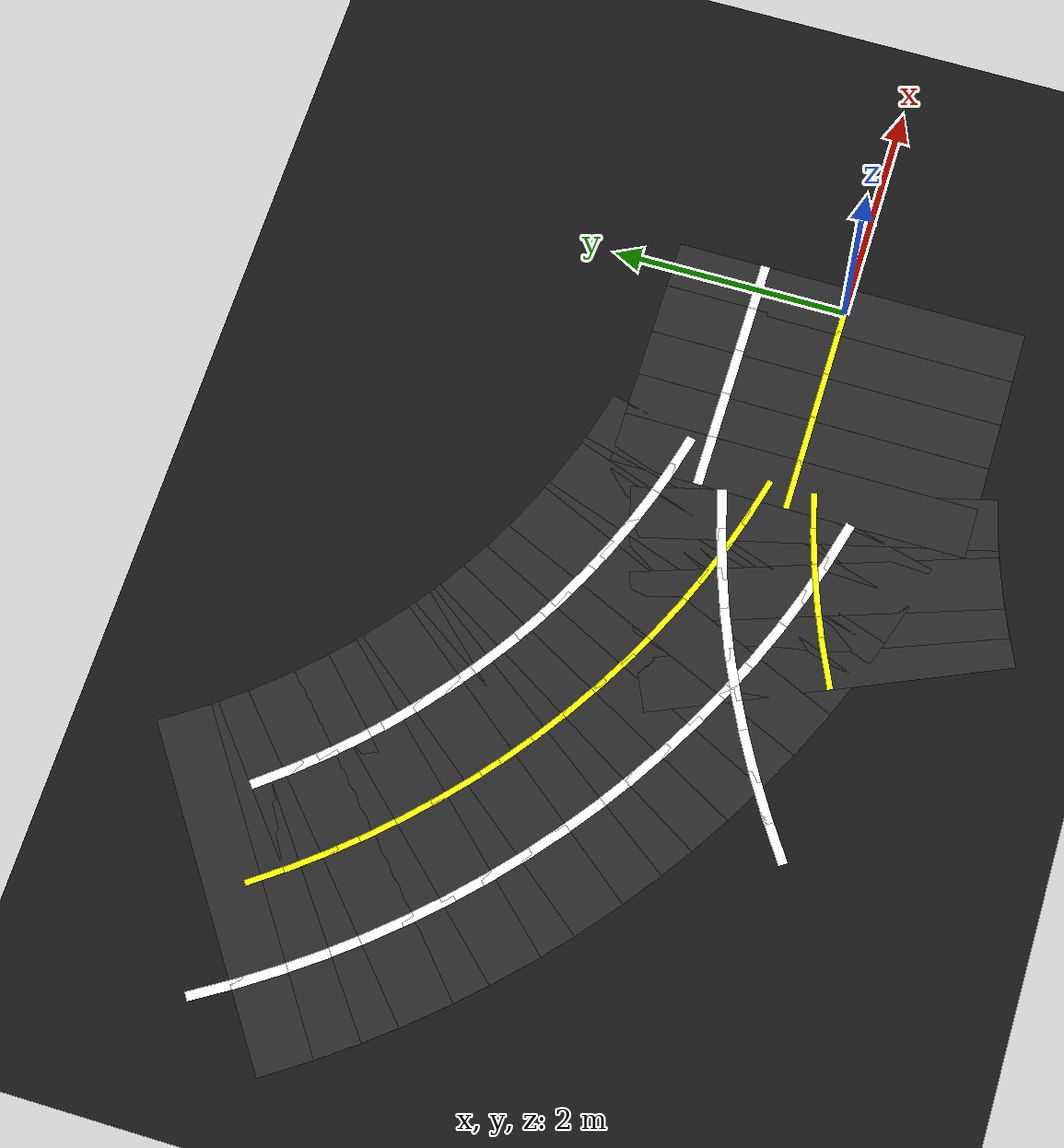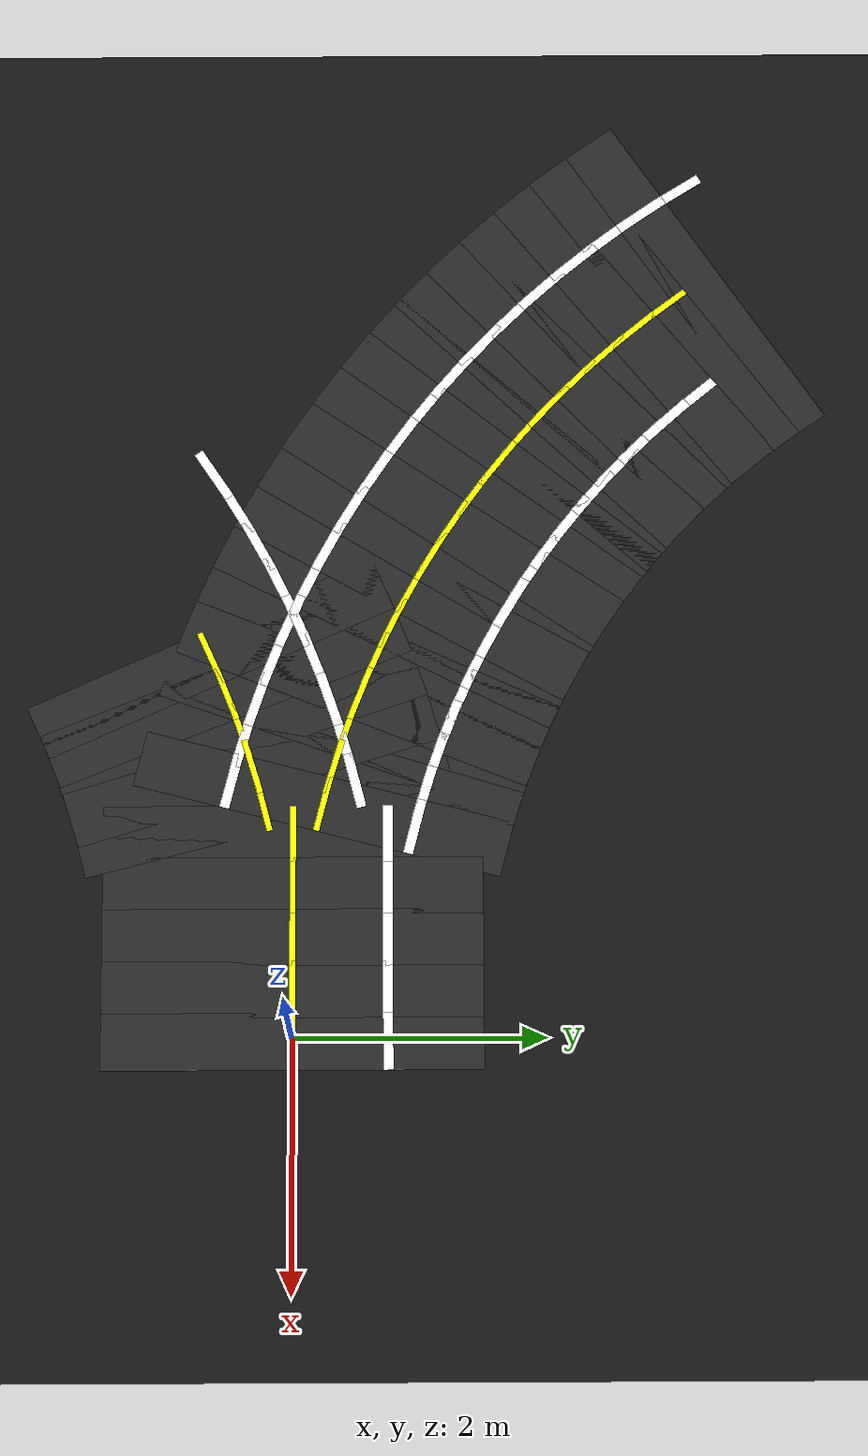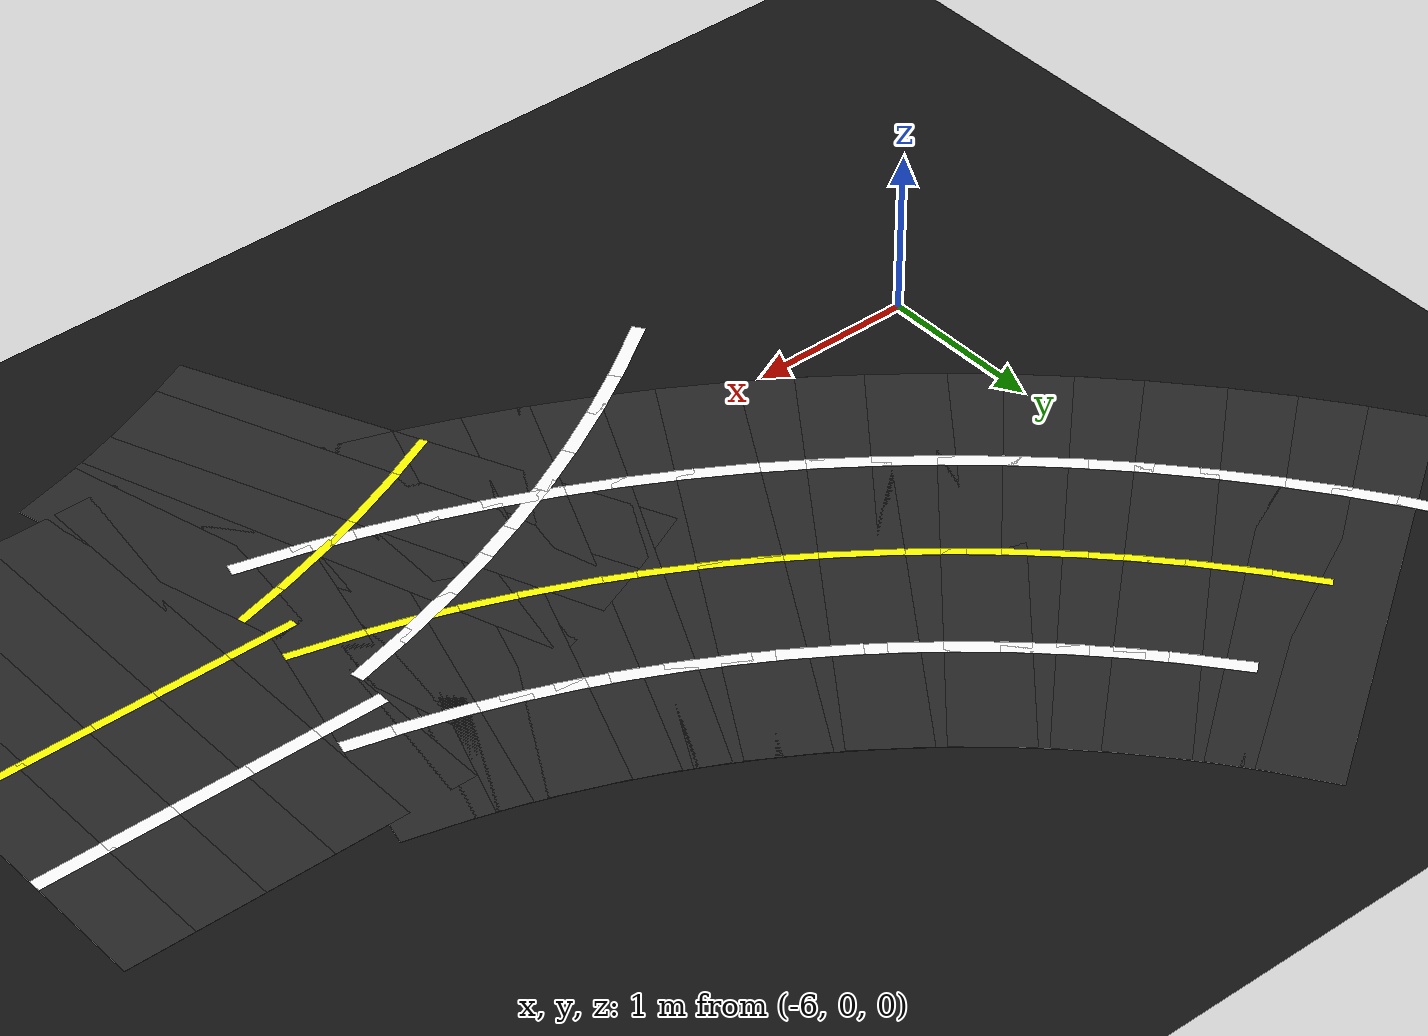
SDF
<sdf version="1.6">
 <world name="figure8_world">
  <model name="ground_plane">
   <static>true</static>
   <link name="link">
    <collision name="collision">
     <geometry><plane><normal>0 0 1</normal><size>100 100</size></plane></geometry>
    </collision>
    <visual name="visual">
     <geometry><plane><normal>0 0 1</normal><size>100 100</size></plane></geometry>
     <material><ambient>0.08 0.08 0.08 1</ambient><diffuse>0.08 0.08 0.08 1</diffuse></material>
    </visual>
   </link>
  </model>
  <model name="seg_00477">
   <static>true</static>
   <pose>-6.9954 3.1265 0.0030 0 0 5.2711</pose>
   <link name="link">
    <collision name="collision"><geometry><box><size>0.4500 0.0800 0.002</size></box></geometry></collision>
    <visual name="visual">
     <geometry><box><size>0.4500 0.0800 0.002</size></box></geometry>
     <material><ambient>1 1 1 1</ambient><diffuse>1 1 1 1</diffuse></material>
    </visual>
   </link>
  </model>
  <model name="seg_00480">
   <static>true</static>
   <pose>-6.1862 3.2596 0.0010 0 0 5.3133</pose>
   <link name="link">
    <collision name="collision"><geometry><box><size>0.4500 3.0000 0.002</size></box></geometry></collision>
    <visual name="visual">
     <geometry><box><size>0.4500 3.0000 0.002</size></box></geometry>
     <material><ambient>0.15 0.15 0.15 1</ambient><diffuse>0.15 0.15 0.15 1</diffuse></material>
    </visual>
   </link>
  </model>
  <model name="seg_00481">
   <static>true</static>
   <pose>-6.8048 2.8355 0.0030 0 0 5.3133</pose>
   <link name="link">
    <collision name="collision"><geometry><box><size>0.4500 0.0800 0.002</size></box></geometry></collision>
    <visual name="visual">
     <geometry><box><size>0.4500 0.0800 0.002</size></box></geometry>
     <material><ambient>1 1 1 1</ambient><diffuse>1 1 1 1</diffuse></material>
    </visual>
   </link>
  </model>
  <model name="seg_00484">
   <static>true</static>
   <pose>-6.0019 3.0025 0.0010 0 0 5.3555</pose>
   <link name="link">
    <collision name="collision"><geometry><box><size>0.4500 3.0000 0.002</size></box></geometry></collision>
    <visual name="visual">
     <geometry><box><size>0.4500 3.0000 0.002</size></box></geometry>
     <material><ambient>0.15 0.15 0.15 1</ambient><diffuse>0.15 0.15 0.15 1</diffuse></material>
    </visual>
   </link>
  </model>
  <model name="seg_00485">
   <static>true</static>
   <pose>-6.6021 2.5528 0.0030 0 0 5.3555</pose>
   <link name="link">
    <collision name="collision"><geometry><box><size>0.4500 0.0800 0.002</size></box></geometry></collision>
    <visual name="visual">
     <geometry><box><size>0.4500 0.0800 0.002</size></box></geometry>
     <material><ambient>1 1 1 1</ambient><diffuse>1 1 1 1</diffuse></material>
    </visual>
   </link>
  </model>
  <model name="seg_00487">
   <static>true</static>
   <pose>-6.0019 3.0025 0.0030 0 0 5.3555</pose>
   <link name="link">
    <collision name="collision"><geometry><box><size>0.4500 0.0500 0.002</size></box></geometry></collision>
    <visual name="visual">
     <geometry><box><size>0.4500 0.0500 0.002</size></box></geometry>
     <material><ambient>1 1 0 1</ambient><diffuse>1 1 0 1</diffuse></material>
    </visual>
   </link>
  </model>
  <model name="seg_00488">
   <static>true</static>
   <pose>-5.8070 2.7535 0.0010 0 0 5.3976</pose>
   <link name="link">
    <collision name="collision"><geometry><box><size>0.4500 3.0000 0.002</size></box></geometry></collision>
    <visual name="visual">
     <geometry><box><size>0.4500 3.0000 0.002</size></box></geometry>
     <material><ambient>0.15 0.15 0.15 1</ambient><diffuse>0.15 0.15 0.15 1</diffuse></material>
    </visual>
   </link>
  </model>
  <model name="seg_00489">
   <static>true</static>
   <pose>-6.3877 2.2789 0.0030 0 0 5.3976</pose>
   <link name="link">
    <collision name="collision"><geometry><box><size>0.4500 0.0800 0.002</size></box></geometry></collision>
    <visual name="visual">
     <geometry><box><size>0.4500 0.0800 0.002</size></box></geometry>
     <material><ambient>1 1 1 1</ambient><diffuse>1 1 1 1</diffuse></material>
    </visual>
   </link>
  </model>
  <model name="seg_00490">
   <static>true</static>
   <pose>-5.2263 3.2282 0.0030 0 0 5.3976</pose>
   <link name="link">
    <collision name="collision"><geometry><box><size>0.4500 0.0800 0.002</size></box></geometry></collision>
    <visual name="visual">
     <geometry><box><size>0.4500 0.0800 0.002</size></box></geometry>
     <material><ambient>1 1 1 1</ambient><diffuse>1 1 1 1</diffuse></material>
    </visual>
   </link>
  </model>
  <model name="seg_00491">
   <static>true</static>
   <pose>-5.8070 2.7535 0.0030 0 0 5.3976</pose>
   <link name="link">
    <collision name="collision"><geometry><box><size>0.4500 0.0500 0.002</size></box></geometry></collision>
    <visual name="visual">
     <geometry><box><size>0.4500 0.0500 0.002</size></box></geometry>
     <material><ambient>1 1 0 1</ambient><diffuse>1 1 0 1</diffuse></material>
    </visual>
   </link>
  </model>
  <model name="seg_00492">
   <static>true</static>
   <pose>-5.6017 2.5129 0.0010 0 0 5.4398</pose>
   <link name="link">
    <collision name="collision"><geometry><box><size>0.4500 3.0000 0.002</size></box></geometry></collision>
    <visual name="visual">
     <geometry><box><size>0.4500 3.0000 0.002</size></box></geometry>
     <material><ambient>0.15 0.15 0.15 1</ambient><diffuse>0.15 0.15 0.15 1</diffuse></material>
    </visual>
   </link>
  </model>
  <model name="seg_00493">
   <static>true</static>
   <pose>-6.1619 2.0142 0.0030 0 0 5.4398</pose>
   <link name="link">
    <collision name="collision"><geometry><box><size>0.4500 0.0800 0.002</size></box></geometry></collision>
    <visual name="visual">
     <geometry><box><size>0.4500 0.0800 0.002</size></box></geometry>
     <material><ambient>1 1 1 1</ambient><diffuse>1 1 1 1</diffuse></material>
    </visual>
   </link>
  </model>
  <model name="seg_00494">
   <static>true</static>
   <pose>-5.0415 3.0116 0.0030 0 0 5.4398</pose>
   <link name="link">
    <collision name="collision"><geometry><box><size>0.4500 0.0800 0.002</size></box></geometry></collision>
    <visual name="visual">
     <geometry><box><size>0.4500 0.0800 0.002</size></box></geometry>
     <material><ambient>1 1 1 1</ambient><diffuse>1 1 1 1</diffuse></material>
    </visual>
   </link>
  </model>
  <model name="seg_00495">
   <static>true</static>
   <pose>-5.6017 2.5129 0.0030 0 0 5.4398</pose>
   <link name="link">
    <collision name="collision"><geometry><box><size>0.4500 0.0500 0.002</size></box></geometry></collision>
    <visual name="visual">
     <geometry><box><size>0.4500 0.0500 0.002</size></box></geometry>
     <material><ambient>1 1 0 1</ambient><diffuse>1 1 0 1</diffuse></material>
    </visual>
   </link>
  </model>
  <model name="seg_00496">
   <static>true</static>
   <pose>-5.3865 2.2812 0.0010 0 0 5.4820</pose>
   <link name="link">
    <collision name="collision"><geometry><box><size>0.4500 3.0000 0.002</size></box></geometry></collision>
    <visual name="visual">
     <geometry><box><size>0.4500 3.0000 0.002</size></box></geometry>
     <material><ambient>0.15 0.15 0.15 1</ambient><diffuse>0.15 0.15 0.15 1</diffuse></material>
    </visual>
   </link>
  </model>
  <model name="seg_00497">
   <static>true</static>
   <pose>-5.9251 1.7593 0.0030 0 0 5.4820</pose>
   <link name="link">
    <collision name="collision"><geometry><box><size>0.4500 0.0800 0.002</size></box></geometry></collision>
    <visual name="visual">
     <geometry><box><size>0.4500 0.0800 0.002</size></box></geometry>
     <material><ambient>1 1 1 1</ambient><diffuse>1 1 1 1</diffuse></material>
    </visual>
   </link>
  </model>
  <model name="seg_00498">
   <static>true</static>
   <pose>-4.8478 2.8031 0.0030 0 0 5.4820</pose>
   <link name="link">
    <collision name="collision"><geometry><box><size>0.4500 0.0800 0.002</size></box></geometry></collision>
    <visual name="visual">
     <geometry><box><size>0.4500 0.0800 0.002</size></box></geometry>
     <material><ambient>1 1 1 1</ambient><diffuse>1 1 1 1</diffuse></material>
    </visual>
   </link>
  </model>
  <model name="seg_00499">
   <static>true</static>
   <pose>-5.3865 2.2812 0.0030 0 0 5.4820</pose>
   <link name="link">
    <collision name="collision"><geometry><box><size>0.4500 0.0500 0.002</size></box></geometry></collision>
    <visual name="visual">
     <geometry><box><size>0.4500 0.0500 0.002</size></box></geometry>
     <material><ambient>1 1 0 1</ambient><diffuse>1 1 0 1</diffuse></material>
    </visual>
   </link>
  </model>
  <model name="seg_00500">
   <static>true</static>
   <pose>-5.1617 2.0588 0.0010 0 0 5.5241</pose>
   <link name="link">
    <collision name="collision"><geometry><box><size>0.4500 3.0000 0.002</size></box></geometry></collision>
    <visual name="visual">
     <geometry><box><size>0.4500 3.0000 0.002</size></box></geometry>
     <material><ambient>0.15 0.15 0.15 1</ambient><diffuse>0.15 0.15 0.15 1</diffuse></material>
    </visual>
   </link>
  </model>
  <model name="seg_00501">
   <static>true</static>
   <pose>-5.6779 1.5147 0.0030 0 0 5.5241</pose>
   <link name="link">
    <collision name="collision"><geometry><box><size>0.4500 0.0800 0.002</size></box></geometry></collision>
    <visual name="visual">
     <geometry><box><size>0.4500 0.0800 0.002</size></box></geometry>
     <material><ambient>1 1 1 1</ambient><diffuse>1 1 1 1</diffuse></material>
    </visual>
   </link>
  </model>
  <model name="seg_00502">
   <static>true</static>
   <pose>-4.6455 2.6029 0.0030 0 0 5.5241</pose>
   <link name="link">
    <collision name="collision"><geometry><box><size>0.4500 0.0800 0.002</size></box></geometry></collision>
    <visual name="visual">
     <geometry><box><size>0.4500 0.0800 0.002</size></box></geometry>
     <material><ambient>1 1 1 1</ambient><diffuse>1 1 1 1</diffuse></material>
    </visual>
   </link>
  </model>
  <model name="seg_00503">
   <static>true</static>
   <pose>-5.1617 2.0588 0.0030 0 0 5.5241</pose>
   <link name="link">
    <collision name="collision"><geometry><box><size>0.4500 0.0500 0.002</size></box></geometry></collision>
    <visual name="visual">
     <geometry><box><size>0.4500 0.0500 0.002</size></box></geometry>
     <material><ambient>1 1 0 1</ambient><diffuse>1 1 0 1</diffuse></material>
    </visual>
   </link>
  </model>
  <model name="seg_00504">
   <static>true</static>
   <pose>-4.9277 1.8460 0.0010 0 0 5.5663</pose>
   <link name="link">
    <collision name="collision"><geometry><box><size>0.4500 3.0000 0.002</size></box></geometry></collision>
    <visual name="visual">
     <geometry><box><size>0.4500 3.0000 0.002</size></box></geometry>
     <material><ambient>0.15 0.15 0.15 1</ambient><diffuse>0.15 0.15 0.15 1</diffuse></material>
    </visual>
   </link>
  </model>
  <model name="seg_00505">
   <static>true</static>
   <pose>-5.4205 1.2806 0.0030 0 0 5.5663</pose>
   <link name="link">
    <collision name="collision"><geometry><box><size>0.4500 0.0800 0.002</size></box></geometry></collision>
    <visual name="visual">
     <geometry><box><size>0.4500 0.0800 0.002</size></box></geometry>
     <material><ambient>1 1 1 1</ambient><diffuse>1 1 1 1</diffuse></material>
    </visual>
   </link>
  </model>
  <model name="seg_00506">
   <static>true</static>
   <pose>-4.4350 2.4114 0.0030 0 0 5.5663</pose>
   <link name="link">
    <collision name="collision"><geometry><box><size>0.4500 0.0800 0.002</size></box></geometry></collision>
    <visual name="visual">
     <geometry><box><size>0.4500 0.0800 0.002</size></box></geometry>
     <material><ambient>1 1 1 1</ambient><diffuse>1 1 1 1</diffuse></material>
    </visual>
   </link>
  </model>
  <model name="seg_00507">
   <static>true</static>
   <pose>-4.9277 1.8460 0.0030 0 0 5.5663</pose>
   <link name="link">
    <collision name="collision"><geometry><box><size>0.4500 0.0500 0.002</size></box></geometry></collision>
    <visual name="visual">
     <geometry><box><size>0.4500 0.0500 0.002</size></box></geometry>
     <material><ambient>1 1 0 1</ambient><diffuse>1 1 0 1</diffuse></material>
    </visual>
   </link>
  </model>
  <model name="seg_00508">
   <static>true</static>
   <pose>-4.6850 1.6433 0.0010 0 0 5.6085</pose>
   <link name="link">
    <collision name="collision"><geometry><box><size>0.4500 3.0000 0.002</size></box></geometry></collision>
    <visual name="visual">
     <geometry><box><size>0.4500 3.0000 0.002</size></box></geometry>
     <material><ambient>0.15 0.15 0.15 1</ambient><diffuse>0.15 0.15 0.15 1</diffuse></material>
    </visual>
   </link>
  </model>
  <model name="seg_00509">
   <static>true</static>
   <pose>-5.1535 1.0576 0.0030 0 0 5.6085</pose>
   <link name="link">
    <collision name="collision"><geometry><box><size>0.4500 0.0800 0.002</size></box></geometry></collision>
    <visual name="visual">
     <geometry><box><size>0.4500 0.0800 0.002</size></box></geometry>
     <material><ambient>1 1 1 1</ambient><diffuse>1 1 1 1</diffuse></material>
    </visual>
   </link>
  </model>
  <model name="seg_00510">
   <static>true</static>
   <pose>-4.2165 2.2290 0.0030 0 0 5.6085</pose>
   <link name="link">
    <collision name="collision"><geometry><box><size>0.4500 0.0800 0.002</size></box></geometry></collision>
    <visual name="visual">
     <geometry><box><size>0.4500 0.0800 0.002</size></box></geometry>
     <material><ambient>1 1 1 1</ambient><diffuse>1 1 1 1</diffuse></material>
    </visual>
   </link>
  </model>
  <model name="seg_00511">
   <static>true</static>
   <pose>-4.6850 1.6433 0.0030 0 0 5.6085</pose>
   <link name="link">
    <collision name="collision"><geometry><box><size>0.4500 0.0500 0.002</size></box></geometry></collision>
    <visual name="visual">
     <geometry><box><size>0.4500 0.0500 0.002</size></box></geometry>
     <material><ambient>1 1 0 1</ambient><diffuse>1 1 0 1</diffuse></material>
    </visual>
   </link>
  </model>
  <model name="seg_00512">
   <static>true</static>
   <pose>-4.4339 1.4510 0.0010 0 0 5.6506</pose>
   <link name="link">
    <collision name="collision"><geometry><box><size>0.4500 3.0000 0.002</size></box></geometry></collision>
    <visual name="visual">
     <geometry><box><size>0.4500 3.0000 0.002</size></box></geometry>
     <material><ambient>0.15 0.15 0.15 1</ambient><diffuse>0.15 0.15 0.15 1</diffuse></material>
    </visual>
   </link>
  </model>
  <model name="seg_00513">
   <static>true</static>
   <pose>-4.8773 0.8461 0.0030 0 0 5.6506</pose>
   <link name="link">
    <collision name="collision"><geometry><box><size>0.4500 0.0800 0.002</size></box></geometry></collision>
    <visual name="visual">
     <geometry><box><size>0.4500 0.0800 0.002</size></box></geometry>
     <material><ambient>1 1 1 1</ambient><diffuse>1 1 1 1</diffuse></material>
    </visual>
   </link>
  </model>
  <model name="seg_00514">
   <static>true</static>
   <pose>-3.9905 2.0559 0.0030 0 0 5.6506</pose>
   <link name="link">
    <collision name="collision"><geometry><box><size>0.4500 0.0800 0.002</size></box></geometry></collision>
    <visual name="visual">
     <geometry><box><size>0.4500 0.0800 0.002</size></box></geometry>
     <material><ambient>1 1 1 1</ambient><diffuse>1 1 1 1</diffuse></material>
    </visual>
   </link>
  </model>
  <model name="seg_00515">
   <static>true</static>
   <pose>-4.4339 1.4510 0.0030 0 0 5.6506</pose>
   <link name="link">
    <collision name="collision"><geometry><box><size>0.4500 0.0500 0.002</size></box></geometry></collision>
    <visual name="visual">
     <geometry><box><size>0.4500 0.0500 0.002</size></box></geometry>
     <material><ambient>1 1 0 1</ambient><diffuse>1 1 0 1</diffuse></material>
    </visual>
   </link>
  </model>
  <model name="seg_00516">
   <static>true</static>
   <pose>-4.1750 1.2695 0.0010 0 0 5.6928</pose>
   <link name="link">
    <collision name="collision"><geometry><box><size>0.4500 3.0000 0.002</size></box></geometry></collision>
    <visual name="visual">
     <geometry><box><size>0.4500 3.0000 0.002</size></box></geometry>
     <material><ambient>0.15 0.15 0.15 1</ambient><diffuse>0.15 0.15 0.15 1</diffuse></material>
    </visual>
   </link>
  </model>
  <model name="seg_00517">
   <static>true</static>
   <pose>-4.5925 0.6464 0.0030 0 0 5.6928</pose>
   <link name="link">
    <collision name="collision"><geometry><box><size>0.4500 0.0800 0.002</size></box></geometry></collision>
    <visual name="visual">
     <geometry><box><size>0.4500 0.0800 0.002</size></box></geometry>
     <material><ambient>1 1 1 1</ambient><diffuse>1 1 1 1</diffuse></material>
    </visual>
   </link>
  </model>
  <model name="seg_00518">
   <static>true</static>
   <pose>-3.7575 1.8925 0.0030 0 0 5.6928</pose>
   <link name="link">
    <collision name="collision"><geometry><box><size>0.4500 0.0800 0.002</size></box></geometry></collision>
    <visual name="visual">
     <geometry><box><size>0.4500 0.0800 0.002</size></box></geometry>
     <material><ambient>1 1 1 1</ambient><diffuse>1 1 1 1</diffuse></material>
    </visual>
   </link>
  </model>
  <model name="seg_00519">
   <static>true</static>
   <pose>-4.1750 1.2695 0.0030 0 0 5.6928</pose>
   <link name="link">
    <collision name="collision"><geometry><box><size>0.4500 0.0500 0.002</size></box></geometry></collision>
    <visual name="visual">
     <geometry><box><size>0.4500 0.0500 0.002</size></box></geometry>
     <material><ambient>1 1 0 1</ambient><diffuse>1 1 0 1</diffuse></material>
    </visual>
   </link>
  </model>
  <model name="seg_00520">
   <static>true</static>
   <pose>-3.9086 1.0990 0.0010 0 0 5.7350</pose>
   <link name="link">
    <collision name="collision"><geometry><box><size>0.4500 3.0000 0.002</size></box></geometry></collision>
    <visual name="visual">
     <geometry><box><size>0.4500 3.0000 0.002</size></box></geometry>
     <material><ambient>0.15 0.15 0.15 1</ambient><diffuse>0.15 0.15 0.15 1</diffuse></material>
    </visual>
   </link>
  </model>
  <model name="seg_00521">
   <static>true</static>
   <pose>-4.2995 0.4589 0.0030 0 0 5.7350</pose>
   <link name="link">
    <collision name="collision"><geometry><box><size>0.4500 0.0800 0.002</size></box></geometry></collision>
    <visual name="visual">
     <geometry><box><size>0.4500 0.0800 0.002</size></box></geometry>
     <material><ambient>1 1 1 1</ambient><diffuse>1 1 1 1</diffuse></material>
    </visual>
   </link>
  </model>
  <model name="seg_00522">
   <static>true</static>
   <pose>-3.5178 1.7391 0.0030 0 0 5.7350</pose>
   <link name="link">
    <collision name="collision"><geometry><box><size>0.4500 0.0800 0.002</size></box></geometry></collision>
    <visual name="visual">
     <geometry><box><size>0.4500 0.0800 0.002</size></box></geometry>
     <material><ambient>1 1 1 1</ambient><diffuse>1 1 1 1</diffuse></material>
    </visual>
   </link>
  </model>
  <model name="seg_00523">
   <static>true</static>
   <pose>-3.9086 1.0990 0.0030 0 0 5.7350</pose>
   <link name="link">
    <collision name="collision"><geometry><box><size>0.4500 0.0500 0.002</size></box></geometry></collision>
    <visual name="visual">
     <geometry><box><size>0.4500 0.0500 0.002</size></box></geometry>
     <material><ambient>1 1 0 1</ambient><diffuse>1 1 0 1</diffuse></material>
    </visual>
   </link>
  </model>
  <model name="seg_00524">
   <static>true</static>
   <pose>-3.6353 0.9399 0.0010 0 0 5.7772</pose>
   <link name="link">
    <collision name="collision"><geometry><box><size>0.4500 3.0000 0.002</size></box></geometry></collision>
    <visual name="visual">
     <geometry><box><size>0.4500 3.0000 0.002</size></box></geometry>
     <material><ambient>0.15 0.15 0.15 1</ambient><diffuse>0.15 0.15 0.15 1</diffuse></material>
    </visual>
   </link>
  </model>
  <model name="seg_00525">
   <static>true</static>
   <pose>-3.9988 0.2839 0.0030 0 0 5.7772</pose>
   <link name="link">
    <collision name="collision"><geometry><box><size>0.4500 0.0800 0.002</size></box></geometry></collision>
    <visual name="visual">
     <geometry><box><size>0.4500 0.0800 0.002</size></box></geometry>
     <material><ambient>1 1 1 1</ambient><diffuse>1 1 1 1</diffuse></material>
    </visual>
   </link>
  </model>
  <model name="seg_00526">
   <static>true</static>
   <pose>-3.2718 1.5959 0.0030 0 0 5.7772</pose>
   <link name="link">
    <collision name="collision"><geometry><box><size>0.4500 0.0800 0.002</size></box></geometry></collision>
    <visual name="visual">
     <geometry><box><size>0.4500 0.0800 0.002</size></box></geometry>
     <material><ambient>1 1 1 1</ambient><diffuse>1 1 1 1</diffuse></material>
    </visual>
   </link>
  </model>
  <model name="seg_00527">
   <static>true</static>
   <pose>-3.6353 0.9399 0.0030 0 0 5.7772</pose>
   <link name="link">
    <collision name="collision"><geometry><box><size>0.4500 0.0500 0.002</size></box></geometry></collision>
    <visual name="visual">
     <geometry><box><size>0.4500 0.0500 0.002</size></box></geometry>
     <material><ambient>1 1 0 1</ambient><diffuse>1 1 0 1</diffuse></material>
    </visual>
   </link>
  </model>
  <model name="seg_00528">
   <static>true</static>
   <pose>-3.3555 0.7925 0.0010 0 0 5.8193</pose>
   <link name="link">
    <collision name="collision"><geometry><box><size>0.4500 3.0000 0.002</size></box></geometry></collision>
    <visual name="visual">
     <geometry><box><size>0.4500 3.0000 0.002</size></box></geometry>
     <material><ambient>0.15 0.15 0.15 1</ambient><diffuse>0.15 0.15 0.15 1</diffuse></material>
    </visual>
   </link>
  </model>
  <model name="seg_00529">
   <static>true</static>
   <pose>-3.6911 0.1218 0.0030 0 0 5.8193</pose>
   <link name="link">
    <collision name="collision"><geometry><box><size>0.4500 0.0800 0.002</size></box></geometry></collision>
    <visual name="visual">
     <geometry><box><size>0.4500 0.0800 0.002</size></box></geometry>
     <material><ambient>1 1 1 1</ambient><diffuse>1 1 1 1</diffuse></material>
    </visual>
   </link>
  </model>
  <model name="seg_00530">
   <static>true</static>
   <pose>-3.0200 1.4633 0.0030 0 0 5.8193</pose>
   <link name="link">
    <collision name="collision"><geometry><box><size>0.4500 0.0800 0.002</size></box></geometry></collision>
    <visual name="visual">
     <geometry><box><size>0.4500 0.0800 0.002</size></box></geometry>
     <material><ambient>1 1 1 1</ambient><diffuse>1 1 1 1</diffuse></material>
    </visual>
   </link>
  </model>
  <model name="seg_00531">
   <static>true</static>
   <pose>-3.3555 0.7925 0.0030 0 0 5.8193</pose>
   <link name="link">
    <collision name="collision"><geometry><box><size>0.4500 0.0500 0.002</size></box></geometry></collision>
    <visual name="visual">
     <geometry><box><size>0.4500 0.0500 0.002</size></box></geometry>
     <material><ambient>1 1 0 1</ambient><diffuse>1 1 0 1</diffuse></material>
    </visual>
   </link>
  </model>
  <model name="seg_00532">
   <static>true</static>
   <pose>-3.0698 0.6570 0.0010 0 0 5.8615</pose>
   <link name="link">
    <collision name="collision"><geometry><box><size>0.4500 3.0000 0.002</size></box></geometry></collision>
    <visual name="visual">
     <geometry><box><size>0.4500 3.0000 0.002</size></box></geometry>
     <material><ambient>0.15 0.15 0.15 1</ambient><diffuse>0.15 0.15 0.15 1</diffuse></material>
    </visual>
   </link>
  </model>
  <model name="seg_00533">
   <static>true</static>
   <pose>-3.3768 -0.0273 0.0030 0 0 5.8615</pose>
   <link name="link">
    <collision name="collision"><geometry><box><size>0.4500 0.0800 0.002</size></box></geometry></collision>
    <visual name="visual">
     <geometry><box><size>0.4500 0.0800 0.002</size></box></geometry>
     <material><ambient>1 1 1 1</ambient><diffuse>1 1 1 1</diffuse></material>
    </visual>
   </link>
  </model>
  <model name="seg_00534">
   <static>true</static>
   <pose>-2.7628 1.3413 0.0030 0 0 5.8615</pose>
   <link name="link">
    <collision name="collision"><geometry><box><size>0.4500 0.0800 0.002</size></box></geometry></collision>
    <visual name="visual">
     <geometry><box><size>0.4500 0.0800 0.002</size></box></geometry>
     <material><ambient>1 1 1 1</ambient><diffuse>1 1 1 1</diffuse></material>
    </visual>
   </link>
  </model>
  <model name="seg_00535">
   <static>true</static>
   <pose>-3.0698 0.6570 0.0030 0 0 5.8615</pose>
   <link name="link">
    <collision name="collision"><geometry><box><size>0.4500 0.0500 0.002</size></box></geometry></collision>
    <visual name="visual">
     <geometry><box><size>0.4500 0.0500 0.002</size></box></geometry>
     <material><ambient>1 1 0 1</ambient><diffuse>1 1 0 1</diffuse></material>
    </visual>
   </link>
  </model>
  <model name="seg_00536">
   <static>true</static>
   <pose>-2.7786 0.5337 0.0010 0 0 5.9037</pose>
   <link name="link">
    <collision name="collision"><geometry><box><size>0.4500 3.0000 0.002</size></box></geometry></collision>
    <visual name="visual">
     <geometry><box><size>0.4500 3.0000 0.002</size></box></geometry>
     <material><ambient>0.15 0.15 0.15 1</ambient><diffuse>0.15 0.15 0.15 1</diffuse></material>
    </visual>
   </link>
  </model>
  <model name="seg_00537">
   <static>true</static>
   <pose>-3.0564 -0.1629 0.0030 0 0 5.9037</pose>
   <link name="link">
    <collision name="collision"><geometry><box><size>0.4500 0.0800 0.002</size></box></geometry></collision>
    <visual name="visual">
     <geometry><box><size>0.4500 0.0800 0.002</size></box></geometry>
     <material><ambient>1 1 1 1</ambient><diffuse>1 1 1 1</diffuse></material>
    </visual>
   </link>
  </model>
  <model name="seg_00538">
   <static>true</static>
   <pose>-2.5007 1.2303 0.0030 0 0 5.9037</pose>
   <link name="link">
    <collision name="collision"><geometry><box><size>0.4500 0.0800 0.002</size></box></geometry></collision>
    <visual name="visual">
     <geometry><box><size>0.4500 0.0800 0.002</size></box></geometry>
     <material><ambient>1 1 1 1</ambient><diffuse>1 1 1 1</diffuse></material>
    </visual>
   </link>
  </model>
  <model name="seg_00539">
   <static>true</static>
   <pose>-2.7786 0.5337 0.0030 0 0 5.9037</pose>
   <link name="link">
    <collision name="collision"><geometry><box><size>0.4500 0.0500 0.002</size></box></geometry></collision>
    <visual name="visual">
     <geometry><box><size>0.4500 0.0500 0.002</size></box></geometry>
     <material><ambient>1 1 0 1</ambient><diffuse>1 1 0 1</diffuse></material>
    </visual>
   </link>
  </model>
  <model name="seg_00540">
   <static>true</static>
   <pose>-2.4824 0.4227 0.0010 0 0 5.9458</pose>
   <link name="link">
    <collision name="collision"><geometry><box><size>0.4500 3.0000 0.002</size></box></geometry></collision>
    <visual name="visual">
     <geometry><box><size>0.4500 3.0000 0.002</size></box></geometry>
     <material><ambient>0.15 0.15 0.15 1</ambient><diffuse>0.15 0.15 0.15 1</diffuse></material>
    </visual>
   </link>
  </model>
  <model name="seg_00541">
   <static>true</static>
   <pose>-2.7307 -0.2850 0.0030 0 0 5.9458</pose>
   <link name="link">
    <collision name="collision"><geometry><box><size>0.4500 0.0800 0.002</size></box></geometry></collision>
    <visual name="visual">
     <geometry><box><size>0.4500 0.0800 0.002</size></box></geometry>
     <material><ambient>1 1 1 1</ambient><diffuse>1 1 1 1</diffuse></material>
    </visual>
   </link>
  </model>
  <model name="seg_00542">
   <static>true</static>
   <pose>-2.2342 1.1305 0.0030 0 0 5.9458</pose>
   <link name="link">
    <collision name="collision"><geometry><box><size>0.4500 0.0800 0.002</size></box></geometry></collision>
    <visual name="visual">
     <geometry><box><size>0.4500 0.0800 0.002</size></box></geometry>
     <material><ambient>1 1 1 1</ambient><diffuse>1 1 1 1</diffuse></material>
    </visual>
   </link>
  </model>
  <model name="seg_00543">
   <static>true</static>
   <pose>-2.4824 0.4227 0.0030 0 0 5.9458</pose>
   <link name="link">
    <collision name="collision"><geometry><box><size>0.4500 0.0500 0.002</size></box></geometry></collision>
    <visual name="visual">
     <geometry><box><size>0.4500 0.0500 0.002</size></box></geometry>
     <material><ambient>1 1 0 1</ambient><diffuse>1 1 0 1</diffuse></material>
    </visual>
   </link>
  </model>
  <model name="seg_00544">
   <static>true</static>
   <pose>-2.1819 0.3244 0.0010 0 0 5.9880</pose>
   <link name="link">
    <collision name="collision"><geometry><box><size>0.4500 3.0000 0.002</size></box></geometry></collision>
    <visual name="visual">
     <geometry><box><size>0.4500 3.0000 0.002</size></box></geometry>
     <material><ambient>0.15 0.15 0.15 1</ambient><diffuse>0.15 0.15 0.15 1</diffuse></material>
    </visual>
   </link>
  </model>
  <model name="seg_00545">
   <static>true</static>
   <pose>-2.4000 -0.3932 0.0030 0 0 5.9880</pose>
   <link name="link">
    <collision name="collision"><geometry><box><size>0.4500 0.0800 0.002</size></box></geometry></collision>
    <visual name="visual">
     <geometry><box><size>0.4500 0.0800 0.002</size></box></geometry>
     <material><ambient>1 1 1 1</ambient><diffuse>1 1 1 1</diffuse></material>
    </visual>
   </link>
  </model>
  <model name="seg_00546">
   <static>true</static>
   <pose>-1.9637 1.0419 0.0030 0 0 5.9880</pose>
   <link name="link">
    <collision name="collision"><geometry><box><size>0.4500 0.0800 0.002</size></box></geometry></collision>
    <visual name="visual">
     <geometry><box><size>0.4500 0.0800 0.002</size></box></geometry>
     <material><ambient>1 1 1 1</ambient><diffuse>1 1 1 1</diffuse></material>
    </visual>
   </link>
  </model>
  <model name="seg_00547">
   <static>true</static>
   <pose>-2.1819 0.3244 0.0030 0 0 5.9880</pose>
   <link name="link">
    <collision name="collision"><geometry><box><size>0.4500 0.0500 0.002</size></box></geometry></collision>
    <visual name="visual">
     <geometry><box><size>0.4500 0.0500 0.002</size></box></geometry>
     <material><ambient>1 1 0 1</ambient><diffuse>1 1 0 1</diffuse></material>
    </visual>
   </link>
  </model>
  <model name="seg_00548">
   <static>true</static>
   <pose>-1.8774 0.2388 0.0010 0 0 6.0302</pose>
   <link name="link">
    <collision name="collision"><geometry><box><size>0.4500 3.0000 0.002</size></box></geometry></collision>
    <visual name="visual">
     <geometry><box><size>0.4500 3.0000 0.002</size></box></geometry>
     <material><ambient>0.15 0.15 0.15 1</ambient><diffuse>0.15 0.15 0.15 1</diffuse></material>
    </visual>
   </link>
  </model>
  <model name="seg_00549">
   <static>true</static>
   <pose>-2.0652 -0.4873 0.0030 0 0 6.0302</pose>
   <link name="link">
    <collision name="collision"><geometry><box><size>0.4500 0.0800 0.002</size></box></geometry></collision>
    <visual name="visual">
     <geometry><box><size>0.4500 0.0800 0.002</size></box></geometry>
     <material><ambient>1 1 1 1</ambient><diffuse>1 1 1 1</diffuse></material>
    </visual>
   </link>
  </model>
  <model name="seg_00550">
   <static>true</static>
   <pose>-1.6897 0.9649 0.0030 0 0 6.0302</pose>
   <link name="link">
    <collision name="collision"><geometry><box><size>0.4500 0.0800 0.002</size></box></geometry></collision>
    <visual name="visual">
     <geometry><box><size>0.4500 0.0800 0.002</size></box></geometry>
     <material><ambient>1 1 1 1</ambient><diffuse>1 1 1 1</diffuse></material>
    </visual>
   </link>
  </model>
  <model name="seg_00551">
   <static>true</static>
   <pose>-1.8774 0.2388 0.0030 0 0 6.0302</pose>
   <link name="link">
    <collision name="collision"><geometry><box><size>0.4500 0.0500 0.002</size></box></geometry></collision>
    <visual name="visual">
     <geometry><box><size>0.4500 0.0500 0.002</size></box></geometry>
     <material><ambient>1 1 0 1</ambient><diffuse>1 1 0 1</diffuse></material>
    </visual>
   </link>
  </model>
  <model name="seg_01069">
   <static>true</static>
   <pose>-4.5925 -0.6464 0.0030 0 0 0.5904</pose>
   <link name="link">
    <collision name="collision"><geometry><box><size>0.4500 0.0800 0.002</size></box></geometry></collision>
    <visual name="visual">
     <geometry><box><size>0.4500 0.0800 0.002</size></box></geometry>
     <material><ambient>1 1 1 1</ambient><diffuse>1 1 1 1</diffuse></material>
    </visual>
   </link>
  </model>
  <model name="seg_01073">
   <static>true</static>
   <pose>-4.2995 -0.4589 0.0030 0 0 0.5482</pose>
   <link name="link">
    <collision name="collision"><geometry><box><size>0.4500 0.0800 0.002</size></box></geometry></collision>
    <visual name="visual">
     <geometry><box><size>0.4500 0.0800 0.002</size></box></geometry>
     <material><ambient>1 1 1 1</ambient><diffuse>1 1 1 1</diffuse></material>
    </visual>
   </link>
  </model>
  <model name="seg_01077">
   <static>true</static>
   <pose>-3.9988 -0.2839 0.0030 0 0 0.5060</pose>
   <link name="link">
    <collision name="collision"><geometry><box><size>0.4500 0.0800 0.002</size></box></geometry></collision>
    <visual name="visual">
     <geometry><box><size>0.4500 0.0800 0.002</size></box></geometry>
     <material><ambient>1 1 1 1</ambient><diffuse>1 1 1 1</diffuse></material>
    </visual>
   </link>
  </model>
  <model name="seg_01081">
   <static>true</static>
   <pose>-3.6911 -0.1218 0.0030 0 0 0.4639</pose>
   <link name="link">
    <collision name="collision"><geometry><box><size>0.4500 0.0800 0.002</size></box></geometry></collision>
    <visual name="visual">
     <geometry><box><size>0.4500 0.0800 0.002</size></box></geometry>
     <material><ambient>1 1 1 1</ambient><diffuse>1 1 1 1</diffuse></material>
    </visual>
   </link>
  </model>
  <model name="seg_01084">
   <static>true</static>
   <pose>-3.0698 -0.6570 0.0010 0 0 0.4217</pose>
   <link name="link">
    <collision name="collision"><geometry><box><size>0.4500 3.0000 0.002</size></box></geometry></collision>
    <visual name="visual">
     <geometry><box><size>0.4500 3.0000 0.002</size></box></geometry>
     <material><ambient>0.15 0.15 0.15 1</ambient><diffuse>0.15 0.15 0.15 1</diffuse></material>
    </visual>
   </link>
  </model>
  <model name="seg_01085">
   <static>true</static>
   <pose>-3.3768 0.0273 0.0030 0 0 0.4217</pose>
   <link name="link">
    <collision name="collision"><geometry><box><size>0.4500 0.0800 0.002</size></box></geometry></collision>
    <visual name="visual">
     <geometry><box><size>0.4500 0.0800 0.002</size></box></geometry>
     <material><ambient>1 1 1 1</ambient><diffuse>1 1 1 1</diffuse></material>
    </visual>
   </link>
  </model>
  <model name="seg_01087">
   <static>true</static>
   <pose>-3.0698 -0.6570 0.0030 0 0 0.4217</pose>
   <link name="link">
    <collision name="collision"><geometry><box><size>0.4500 0.0500 0.002</size></box></geometry></collision>
    <visual name="visual">
     <geometry><box><size>0.4500 0.0500 0.002</size></box></geometry>
     <material><ambient>1 1 0 1</ambient><diffuse>1 1 0 1</diffuse></material>
    </visual>
   </link>
  </model>
  <model name="seg_01088">
   <static>true</static>
   <pose>-2.7786 -0.5337 0.0010 0 0 0.3795</pose>
   <link name="link">
    <collision name="collision"><geometry><box><size>0.4500 3.0000 0.002</size></box></geometry></collision>
    <visual name="visual">
     <geometry><box><size>0.4500 3.0000 0.002</size></box></geometry>
     <material><ambient>0.15 0.15 0.15 1</ambient><diffuse>0.15 0.15 0.15 1</diffuse></material>
    </visual>
   </link>
  </model>
  <model name="seg_01089">
   <static>true</static>
   <pose>-3.0564 0.1629 0.0030 0 0 0.3795</pose>
   <link name="link">
    <collision name="collision"><geometry><box><size>0.4500 0.0800 0.002</size></box></geometry></collision>
    <visual name="visual">
     <geometry><box><size>0.4500 0.0800 0.002</size></box></geometry>
     <material><ambient>1 1 1 1</ambient><diffuse>1 1 1 1</diffuse></material>
    </visual>
   </link>
  </model>
  <model name="seg_01091">
   <static>true</static>
   <pose>-2.7786 -0.5337 0.0030 0 0 0.3795</pose>
   <link name="link">
    <collision name="collision"><geometry><box><size>0.4500 0.0500 0.002</size></box></geometry></collision>
    <visual name="visual">
     <geometry><box><size>0.4500 0.0500 0.002</size></box></geometry>
     <material><ambient>1 1 0 1</ambient><diffuse>1 1 0 1</diffuse></material>
    </visual>
   </link>
  </model>
  <model name="seg_01092">
   <static>true</static>
   <pose>-2.4824 -0.4227 0.0010 0 0 0.3374</pose>
   <link name="link">
    <collision name="collision"><geometry><box><size>0.4500 3.0000 0.002</size></box></geometry></collision>
    <visual name="visual">
     <geometry><box><size>0.4500 3.0000 0.002</size></box></geometry>
     <material><ambient>0.15 0.15 0.15 1</ambient><diffuse>0.15 0.15 0.15 1</diffuse></material>
    </visual>
   </link>
  </model>
  <model name="seg_01093">
   <static>true</static>
   <pose>-2.7307 0.2850 0.0030 0 0 0.3374</pose>
   <link name="link">
    <collision name="collision"><geometry><box><size>0.4500 0.0800 0.002</size></box></geometry></collision>
    <visual name="visual">
     <geometry><box><size>0.4500 0.0800 0.002</size></box></geometry>
     <material><ambient>1 1 1 1</ambient><diffuse>1 1 1 1</diffuse></material>
    </visual>
   </link>
  </model>
  <model name="seg_01095">
   <static>true</static>
   <pose>-2.4824 -0.4227 0.0030 0 0 0.3374</pose>
   <link name="link">
    <collision name="collision"><geometry><box><size>0.4500 0.0500 0.002</size></box></geometry></collision>
    <visual name="visual">
     <geometry><box><size>0.4500 0.0500 0.002</size></box></geometry>
     <material><ambient>1 1 0 1</ambient><diffuse>1 1 0 1</diffuse></material>
    </visual>
   </link>
  </model>
  <model name="seg_01096">
   <static>true</static>
   <pose>-2.1819 -0.3244 0.0010 0 0 0.2952</pose>
   <link name="link">
    <collision name="collision"><geometry><box><size>0.4500 3.0000 0.002</size></box></geometry></collision>
    <visual name="visual">
     <geometry><box><size>0.4500 3.0000 0.002</size></box></geometry>
     <material><ambient>0.15 0.15 0.15 1</ambient><diffuse>0.15 0.15 0.15 1</diffuse></material>
    </visual>
   </link>
  </model>
  <model name="seg_01097">
   <static>true</static>
   <pose>-2.4000 0.3932 0.0030 0 0 0.2952</pose>
   <link name="link">
    <collision name="collision"><geometry><box><size>0.4500 0.0800 0.002</size></box></geometry></collision>
    <visual name="visual">
     <geometry><box><size>0.4500 0.0800 0.002</size></box></geometry>
     <material><ambient>1 1 1 1</ambient><diffuse>1 1 1 1</diffuse></material>
    </visual>
   </link>
  </model>
  <model name="seg_01099">
   <static>true</static>
   <pose>-2.1819 -0.3244 0.0030 0 0 0.2952</pose>
   <link name="link">
    <collision name="collision"><geometry><box><size>0.4500 0.0500 0.002</size></box></geometry></collision>
    <visual name="visual">
     <geometry><box><size>0.4500 0.0500 0.002</size></box></geometry>
     <material><ambient>1 1 0 1</ambient><diffuse>1 1 0 1</diffuse></material>
    </visual>
   </link>
  </model>
  <model name="seg_01100">
   <static>true</static>
   <pose>-1.8774 -0.2388 0.0010 0 0 0.2530</pose>
   <link name="link">
    <collision name="collision"><geometry><box><size>0.4500 3.0000 0.002</size></box></geometry></collision>
    <visual name="visual">
     <geometry><box><size>0.4500 3.0000 0.002</size></box></geometry>
     <material><ambient>0.15 0.15 0.15 1</ambient><diffuse>0.15 0.15 0.15 1</diffuse></material>
    </visual>
   </link>
  </model>
  <model name="seg_01101">
   <static>true</static>
   <pose>-2.0652 0.4873 0.0030 0 0 0.2530</pose>
   <link name="link">
    <collision name="collision"><geometry><box><size>0.4500 0.0800 0.002</size></box></geometry></collision>
    <visual name="visual">
     <geometry><box><size>0.4500 0.0800 0.002</size></box></geometry>
     <material><ambient>1 1 1 1</ambient><diffuse>1 1 1 1</diffuse></material>
    </visual>
   </link>
  </model>
  <model name="seg_01103">
   <static>true</static>
   <pose>-1.8774 -0.2388 0.0030 0 0 0.2530</pose>
   <link name="link">
    <collision name="collision"><geometry><box><size>0.4500 0.0500 0.002</size></box></geometry></collision>
    <visual name="visual">
     <geometry><box><size>0.4500 0.0500 0.002</size></box></geometry>
     <material><ambient>1 1 0 1</ambient><diffuse>1 1 0 1</diffuse></material>
    </visual>
   </link>
  </model>
  <model name="seg_01104">
   <static>true</static>
   <pose>-1.6367 0.0000 0.0010 0 0 0.0000</pose>
   <link name="link">
    <collision name="collision"><geometry><box><size>0.4500 3.0000 0.002</size></box></geometry></collision>
    <visual name="visual">
     <geometry><box><size>0.4500 3.0000 0.002</size></box></geometry>
     <material><ambient>0.15 0.15 0.15 1</ambient><diffuse>0.15 0.15 0.15 1</diffuse></material>
    </visual>
   </link>
  </model>
  <model name="seg_01106">
   <static>true</static>
   <pose>-1.6367 0.7500 0.0030 0 0 0.0000</pose>
   <link name="link">
    <collision name="collision"><geometry><box><size>0.4500 0.0800 0.002</size></box></geometry></collision>
    <visual name="visual">
     <geometry><box><size>0.4500 0.0800 0.002</size></box></geometry>
     <material><ambient>1 1 1 1</ambient><diffuse>1 1 1 1</diffuse></material>
    </visual>
   </link>
  </model>
  <model name="seg_01107">
   <static>true</static>
   <pose>-1.6367 0.0000 0.0030 0 0 0.0000</pose>
   <link name="link">
    <collision name="collision"><geometry><box><size>0.4500 0.0500 0.002</size></box></geometry></collision>
    <visual name="visual">
     <geometry><box><size>0.4500 0.0500 0.002</size></box></geometry>
     <material><ambient>1 1 0 1</ambient><diffuse>1 1 0 1</diffuse></material>
    </visual>
   </link>
  </model>
  <model name="seg_01108">
   <static>true</static>
   <pose>-1.2227 0.0000 0.0010 0 0 0.0000</pose>
   <link name="link">
    <collision name="collision"><geometry><box><size>0.4500 3.0000 0.002</size></box></geometry></collision>
    <visual name="visual">
     <geometry><box><size>0.4500 3.0000 0.002</size></box></geometry>
     <material><ambient>0.15 0.15 0.15 1</ambient><diffuse>0.15 0.15 0.15 1</diffuse></material>
    </visual>
   </link>
  </model>
  <model name="seg_01110">
   <static>true</static>
   <pose>-1.2227 0.7500 0.0030 0 0 0.0000</pose>
   <link name="link">
    <collision name="collision"><geometry><box><size>0.4500 0.0800 0.002</size></box></geometry></collision>
    <visual name="visual">
     <geometry><box><size>0.4500 0.0800 0.002</size></box></geometry>
     <material><ambient>1 1 1 1</ambient><diffuse>1 1 1 1</diffuse></material>
    </visual>
   </link>
  </model>
  <model name="seg_01111">
   <static>true</static>
   <pose>-1.2227 0.0000 0.0030 0 0 0.0000</pose>
   <link name="link">
    <collision name="collision"><geometry><box><size>0.4500 0.0500 0.002</size></box></geometry></collision>
    <visual name="visual">
     <geometry><box><size>0.4500 0.0500 0.002</size></box></geometry>
     <material><ambient>1 1 0 1</ambient><diffuse>1 1 0 1</diffuse></material>
    </visual>
   </link>
  </model>
  <model name="seg_01112">
   <static>true</static>
   <pose>-0.8087 0.0000 0.0010 0 0 0.0000</pose>
   <link name="link">
    <collision name="collision"><geometry><box><size>0.4500 3.0000 0.002</size></box></geometry></collision>
    <visual name="visual">
     <geometry><box><size>0.4500 3.0000 0.002</size></box></geometry>
     <material><ambient>0.15 0.15 0.15 1</ambient><diffuse>0.15 0.15 0.15 1</diffuse></material>
    </visual>
   </link>
  </model>
  <model name="seg_01114">
   <static>true</static>
   <pose>-0.8087 0.7500 0.0030 0 0 0.0000</pose>
   <link name="link">
    <collision name="collision"><geometry><box><size>0.4500 0.0800 0.002</size></box></geometry></collision>
    <visual name="visual">
     <geometry><box><size>0.4500 0.0800 0.002</size></box></geometry>
     <material><ambient>1 1 1 1</ambient><diffuse>1 1 1 1</diffuse></material>
    </visual>
   </link>
  </model>
  <model name="seg_01115">
   <static>true</static>
   <pose>-0.8087 0.0000 0.0030 0 0 0.0000</pose>
   <link name="link">
    <collision name="collision"><geometry><box><size>0.4500 0.0500 0.002</size></box></geometry></collision>
    <visual name="visual">
     <geometry><box><size>0.4500 0.0500 0.002</size></box></geometry>
     <material><ambient>1 1 0 1</ambient><diffuse>1 1 0 1</diffuse></material>
    </visual>
   </link>
  </model>
  <model name="seg_01116">
   <static>true</static>
   <pose>-0.3947 0.0000 0.0010 0 0 0.0000</pose>
   <link name="link">
    <collision name="collision"><geometry><box><size>0.4500 3.0000 0.002</size></box></geometry></collision>
    <visual name="visual">
     <geometry><box><size>0.4500 3.0000 0.002</size></box></geometry>
     <material><ambient>0.15 0.15 0.15 1</ambient><diffuse>0.15 0.15 0.15 1</diffuse></material>
    </visual>
   </link>
  </model>
  <model name="seg_01118">
   <static>true</static>
   <pose>-0.3947 0.7500 0.0030 0 0 0.0000</pose>
   <link name="link">
    <collision name="collision"><geometry><box><size>0.4500 0.0800 0.002</size></box></geometry></collision>
    <visual name="visual">
     <geometry><box><size>0.4500 0.0800 0.002</size></box></geometry>
     <material><ambient>1 1 1 1</ambient><diffuse>1 1 1 1</diffuse></material>
    </visual>
   </link>
  </model>
  <model name="seg_01119">
   <static>true</static>
   <pose>-0.3947 0.0000 0.0030 0 0 0.0000</pose>
   <link name="link">
    <collision name="collision"><geometry><box><size>0.4500 0.0500 0.002</size></box></geometry></collision>
    <visual name="visual">
     <geometry><box><size>0.4500 0.0500 0.002</size></box></geometry>
     <material><ambient>1 1 0 1</ambient><diffuse>1 1 0 1</diffuse></material>
    </visual>
   </link>
  </model>
  <model name="seg_01120">
   <static>true</static>
   <pose>0.0193 0.0000 0.0010 0 0 0.0000</pose>
   <link name="link">
    <collision name="collision"><geometry><box><size>0.4500 3.0000 0.002</size></box></geometry></collision>
    <visual name="visual">
     <geometry><box><size>0.4500 3.0000 0.002</size></box></geometry>
     <material><ambient>0.15 0.15 0.15 1</ambient><diffuse>0.15 0.15 0.15 1</diffuse></material>
    </visual>
   </link>
  </model>
  <model name="seg_01122">
   <static>true</static>
   <pose>0.0193 0.7500 0.0030 0 0 0.0000</pose>
   <link name="link">
    <collision name="collision"><geometry><box><size>0.4500 0.0800 0.002</size></box></geometry></collision>
    <visual name="visual">
     <geometry><box><size>0.4500 0.0800 0.002</size></box></geometry>
     <material><ambient>1 1 1 1</ambient><diffuse>1 1 1 1</diffuse></material>
    </visual>
   </link>
  </model>
  <model name="seg_01123">
   <static>true</static>
   <pose>0.0193 0.0000 0.0030 0 0 0.0000</pose>
   <link name="link">
    <collision name="collision"><geometry><box><size>0.4500 0.0500 0.002</size></box></geometry></collision>
    <visual name="visual">
     <geometry><box><size>0.4500 0.0500 0.002</size></box></geometry>
     <material><ambient>1 1 0 1</ambient><diffuse>1 1 0 1</diffuse></material>
    </visual>
   </link>
  </model>
 </world>
</sdf>
